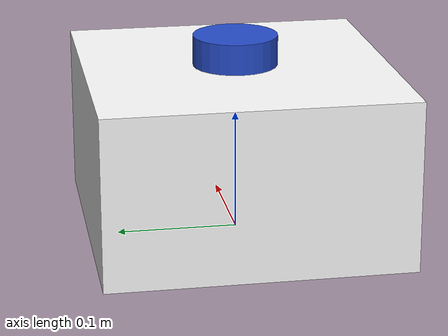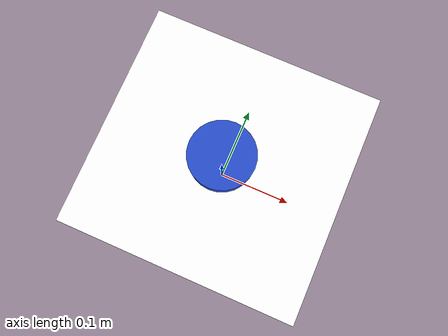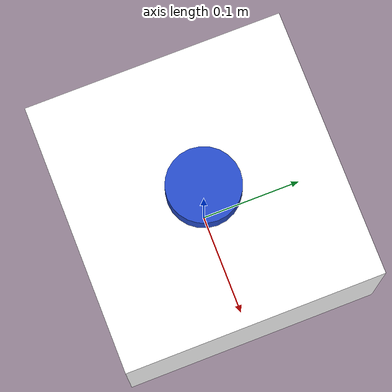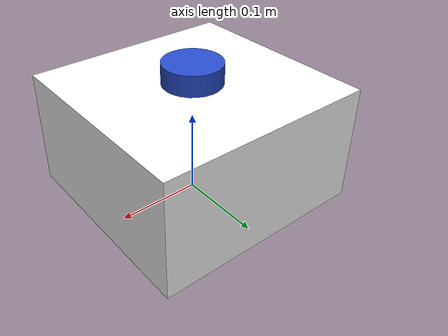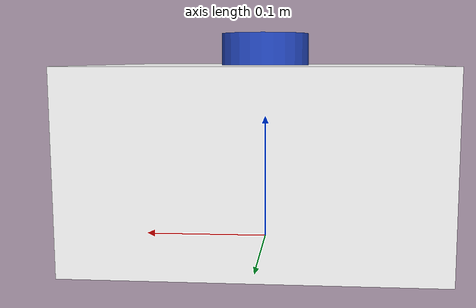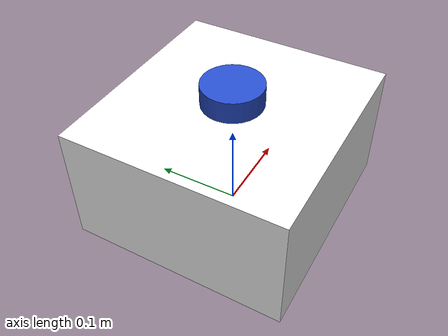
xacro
<?xml version="1.0"?>
<robot xmlns:xacro="http://www.ros.org/wiki/xacro" name="omnibot">

	<xacro:include filename="inertial_macros.xacro"/>

	<xacro:include filename="gazebo_control.xacro"/>

	<link name="base_link">
		<visual>
			<geometry>
				<box size="0.26 0.25 0.14"/>
			</geometry>
			<origin xyz="0 0 0.072"/>
			<material name="white">
				<color rgba="1 1 1 1"/>
			</material>
		</visual>
		<collision>
			<geometry>
				<box size="0.26 0.25 0.14"/>
			</geometry>
			<origin xyz="0 0 0.072"/>
		</collision>
		<xacro:inertial_box mass="0.5" x="0.326" y="0.206" z="0.094">
			<origin xyz="0 0 0.072"/>
		</xacro:inertial_box>
	</link>

	<link name="base_laser">
		<visual>
			<geometry>
				<cylinder length="0.027" radius="0.035"/>
			</geometry>
		</visual>
		<collision>
			<geometry>
				<cylinder length="0.027" radius="0.035"/>
			</geometry>
		</collision>
		<xacro:inertial_cylinder mass="0.1" length="0.02" radius="0.04">
			<origin xyz="0 0 0"/>
		</xacro:inertial_cylinder>
	</link>

	<joint name="base_link_to_base_laser" type="fixed">
		<parent link="base_link"/>
		<child link="base_laser"/>
		<origin rpy="0 0 0" xyz="0 0 0.1535"/>
	</joint>

	<gazebo reference="base_laser">
		<material>Gazebo/Blue</material>
		<sensor type="ray" name="base_laser">
			<pose>0 0 0 0 0 0</pose>
			<visualize>false</visualize>
			<update_rate>100</update_rate>
			<ray>
				<scan>
					<horizontal>
						<samples>360</samples>
						<resolution>1</resolution>
						<min_angle>-3.1415926535897931</min_angle>
						<max_angle>3.1415926535897931</max_angle>
					</horizontal>
				</scan>
				<range>
					<min>0.15</min>
					<max>12</max>
					<resolution>0.01</resolution>
				</range>
			</ray>
			<plugin name="base_laser_controller" filename="libgazebo_ros_ray_sensor.so">
				<ros>
					<argument>~/out:=scan</argument>
				</ros>
				<output_type>sensor_msgs/LaserScan</output_type>
				<frameName>base_laser</frameName>
			</plugin>
		</sensor>
	</gazebo>

	<gazebo reference="base_link">
		<material>Gazebo/Red</material>
	</gazebo>

</robot>
